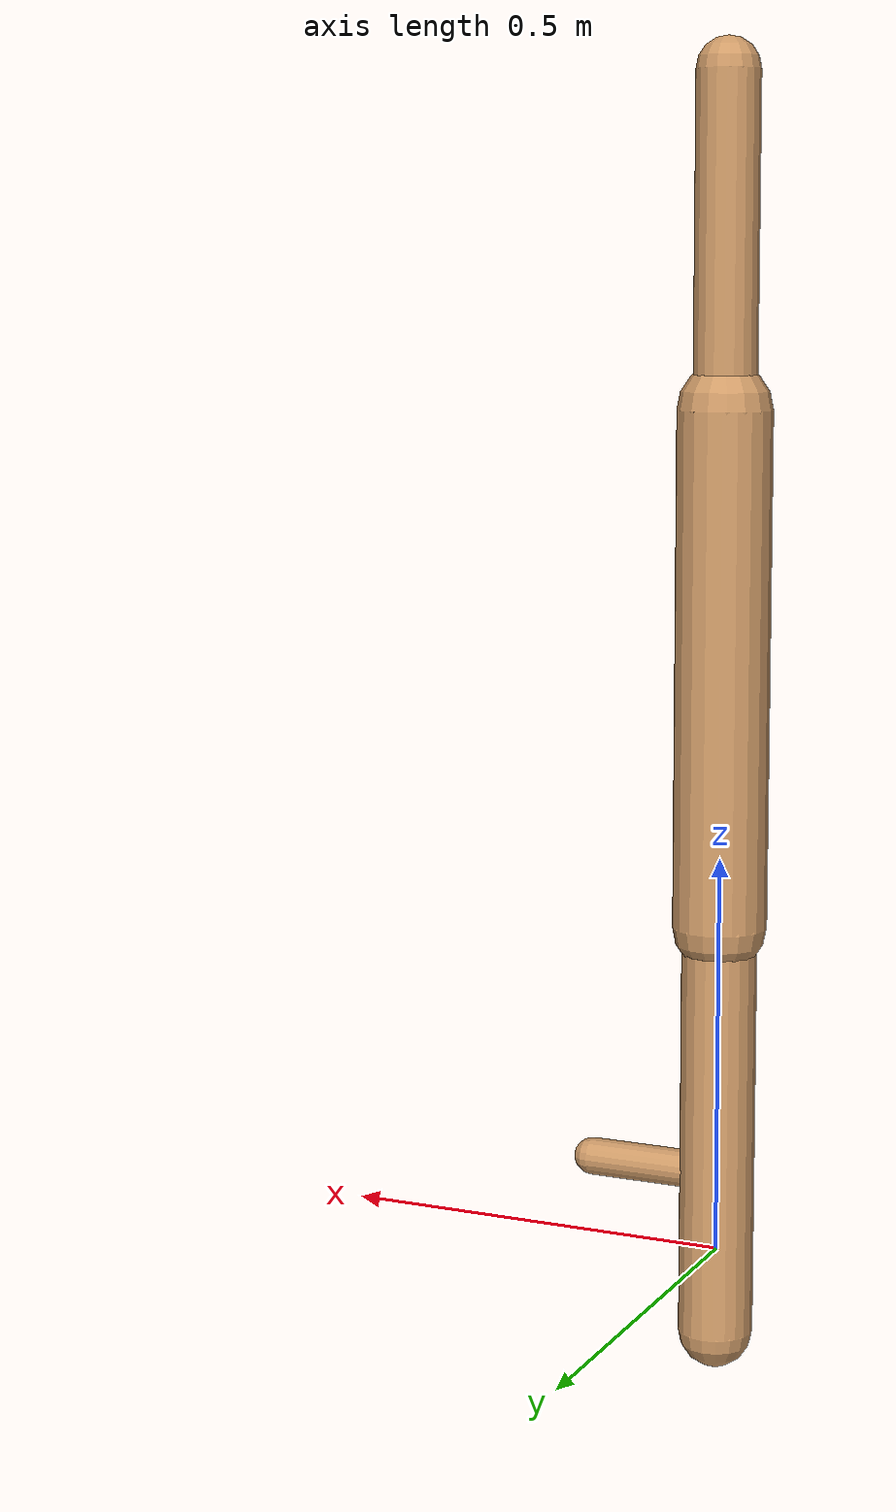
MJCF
<mujoco model="walker2d">
  <compiler angle="degree" coordinate="global" inertiafromgeom="true" />
  <default>
    <joint armature="0.01" damping=".1" limited="true" />
    <geom conaffinity="0" condim="3" contype="1" density="1000" friction="0.8 .1 .1" rgba="0.8 0.6 .4 1" />
  </default>
  <option integrator="RK4" timestep="0.002" />
  <worldbody>

    <body name="torso" pos="0 0 0.39016266804096406">
      <joint armature="0" axis="1 0 0" damping="0" limited="false" name="ignorex" pos="0 0 0" stiffness="0" type="slide" />
      <joint armature="0" axis="0 0 1" damping="0" limited="false" name="ignorez" pos="0 0 0" ref="1.25" stiffness="0" type="slide" />
      <joint armature="0" axis="0 1 0" damping="0" limited="false" name="ignorey" pos="0 0 0" stiffness="0" type="hinge" />
      <geom fromto="0 0 1.45 0 0 1.05" name="torso_geom" size="0.038804751102590906" type="capsule" />
      <body name="thigh">
        <joint axis="0 -1 0" name="thigh_joint" pos="0 0 1.05" range="-150 0" type="hinge" />
        <geom fromto="0.0 0.0 1.05 0.0 0.0 0.41518610461217487" name="thigh_geom" size="0.05806704145745283" type="capsule" />
        <body name="leg" pos="0.0 0.0 -0.1848138953878251">
          <joint axis="0 -1 0" name="leg_joint" pos="0 0 0.6" range="-150 0" type="hinge" />
          <geom fromto="0.0 0.0 0.6 0.0 0.0 -0.10534877265313897" name="leg_geom" size="0.046453633165962266" type="capsule" />
          <body name="foot" pos="0.0 0.0 -0.20534877265313897">
            <joint axis="0 -1 0" name="foot_joint" pos="0 0 0.1" range="-45 45" type="hinge" />
            <geom fromto="0.0 0.0 0.1 0.16799421876949094 0.0 0.1" name="foot_geom" size="0.023309065577681223" type="capsule" />
          </body>
        </body>
      </body>

      <body name="thigh_left">
        <joint axis="0 -1 0" name="thigh_left_joint" pos="0 0 1.05" range="-150 0" type="hinge" />
        <geom fromto="0.0 0.0 1.05 0.0 0.0 0.41518610461217487" name="thigh_left_geom" rgba=".7 .3 .6 1" size="0.05806704145745283" type="capsule" />
        <body name="leg_left" pos="0.0 0.0 -0.1848138953878251">
          <joint axis="0 -1 0" name="leg_left_joint" pos="0 0 0.6" range="-150 0" type="hinge" />
          <geom fromto="0.0 0.0 0.6 0.0 0.0 -0.10534877265313897" name="leg_left_geom" rgba=".7 .3 .6 1" size="0.046453633165962266" type="capsule" />
          <body name="foot_left" pos="0.0 0.0 -0.20534877265313897">
            <joint axis="0 -1 0" name="foot_left_joint" pos="0 0 0.1" range="-45 45" type="hinge" />
            <geom fromto="0.0 0.0 0.1 0.16799421876949094 0.0 0.1" name="foot_left_geom" rgba=".7 .3 .6 1" size="0.023309065577681223" type="capsule" />
          </body>
        </body>
      </body>
    </body>
  </worldbody>
  <actuator>

    <motor ctrllimited="true" ctrlrange="-1.0 1.0" gear="100" joint="thigh_joint" />
    <motor ctrllimited="true" ctrlrange="-1.0 1.0" gear="100" joint="leg_joint" />
    <motor ctrllimited="true" ctrlrange="-1.0 1.0" gear="100" joint="foot_joint" />
    <motor ctrllimited="true" ctrlrange="-1.0 1.0" gear="100" joint="thigh_left_joint" />
    <motor ctrllimited="true" ctrlrange="-1.0 1.0" gear="100" joint="leg_left_joint" />
    <motor ctrllimited="true" ctrlrange="-1.0 1.0" gear="100" joint="foot_left_joint" />

  </actuator>
</mujoco>
